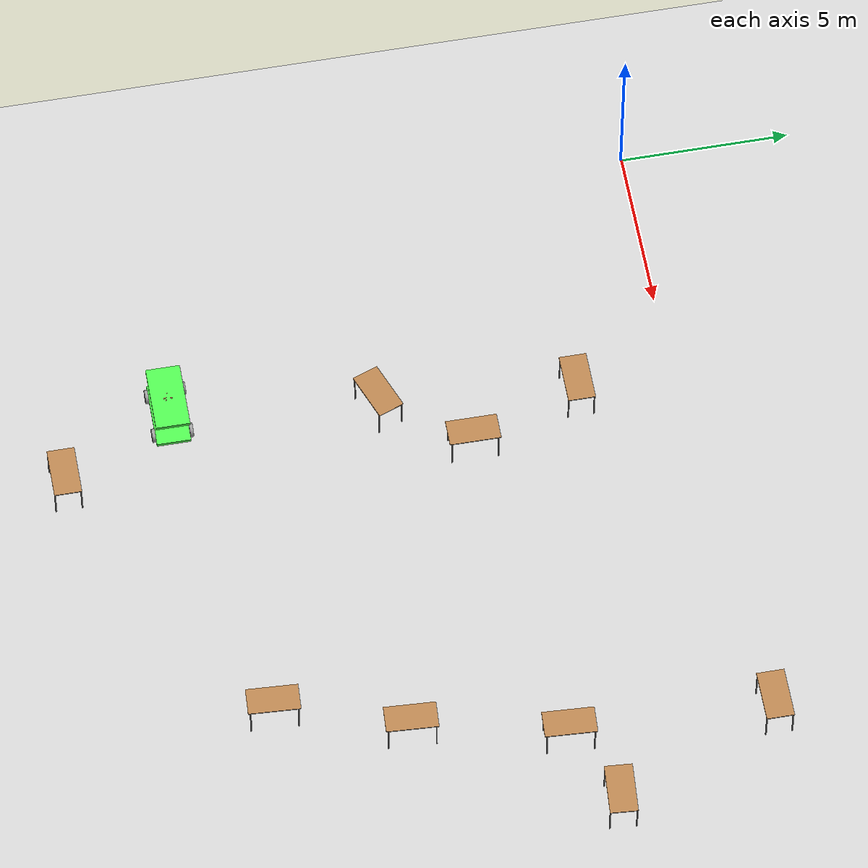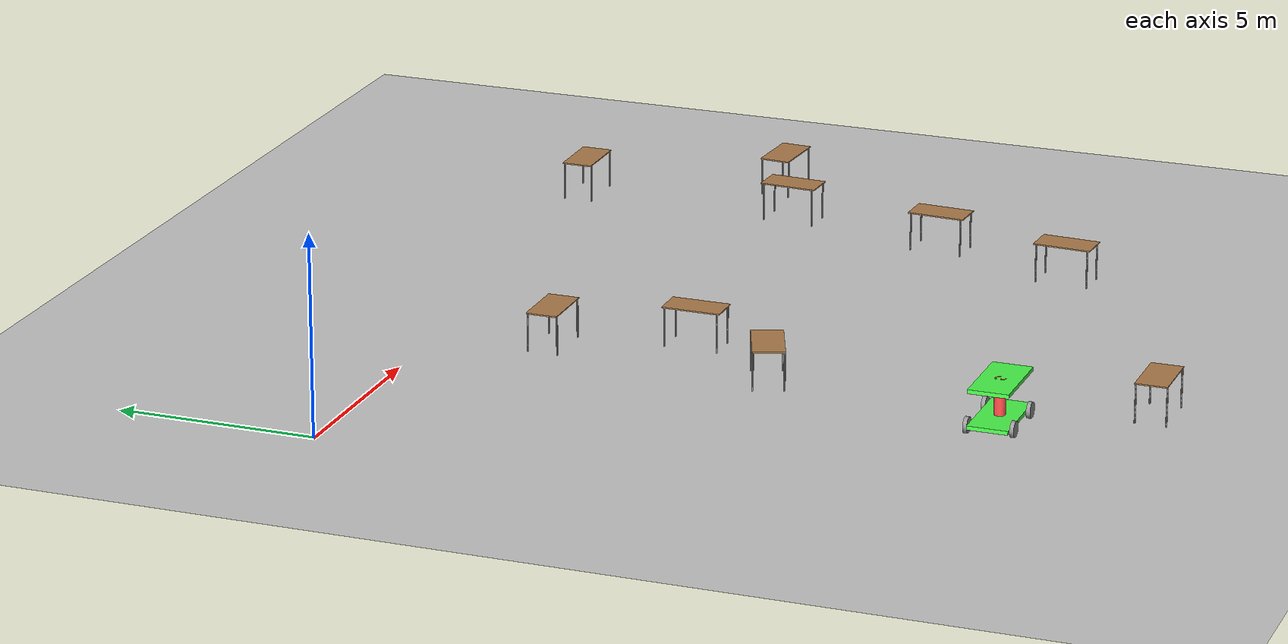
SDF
<sdf version="1.6">
 <world name="default">
  <model name="ground_plane">
   <static>1</static>
   <link name="link">
    <collision name="collision">
     <geometry><plane><normal>0 0 1</normal><size>100 100</size></plane></geometry>
     <surface>
      <contact><collide_bitmask>65535</collide_bitmask></contact>
      <friction><ode><mu>100</mu><mu2>50</mu2></ode></friction>
     </surface>
    </collision>
    <visual name="visual">
     <cast_shadows>0</cast_shadows>
     <geometry><plane><normal>0 0 1</normal><size>100 100</size></plane></geometry>
     <material>
      <script><uri>file://media/materials/scripts/gazebo.material</uri><name>Gazebo/Grey</name></script>
     </material>
    </visual>
   </link>
  </model>
  <model name="table_clone_1">
   <static>1</static>
   <link name="link">
    <collision name="surface">
     <pose>0 0 1 0 -0 0</pose>
     <geometry><box><size>1.5 0.8 0.03</size></box></geometry>
     <surface><friction><ode><mu>0.6</mu><mu2>0.6</mu2></ode></friction></surface>
    </collision>
    <visual name="visual1">
     <pose>0 0 1 0 -0 0</pose>
     <geometry><box><size>1.5 0.8 0.03</size></box></geometry>
     <material>
      <script><uri>file://media/materials/scripts/gazebo.material</uri><name>Gazebo/Wood</name></script>
     </material>
    </visual>
    <collision name="front_left_leg">
     <pose>0.68 0.38 0.5 0 -0 0</pose>
     <geometry><cylinder><radius>0.02</radius><length>1</length></cylinder></geometry>
    </collision>
    <visual name="front_left_leg">
     <pose>0.68 0.38 0.5 0 -0 0</pose>
     <geometry><cylinder><radius>0.02</radius><length>1</length></cylinder></geometry>
     <material>
      <script><uri>file://media/materials/scripts/gazebo.material</uri><name>Gazebo/Grey</name></script>
     </material>
    </visual>
    <collision name="front_right_leg">
     <pose>0.68 -0.38 0.5 0 -0 0</pose>
     <geometry><cylinder><radius>0.02</radius><length>1</length></cylinder></geometry>
    </collision>
    <visual name="front_right_leg">
     <pose>0.68 -0.38 0.5 0 -0 0</pose>
     <geometry><cylinder><radius>0.02</radius><length>1</length></cylinder></geometry>
     <material>
      <script><uri>file://media/materials/scripts/gazebo.material</uri><name>Gazebo/Grey</name></script>
     </material>
    </visual>
    <collision name="back_right_leg">
     <pose>-0.68 -0.38 0.5 0 -0 0</pose>
     <geometry><cylinder><radius>0.02</radius><length>1</length></cylinder></geometry>
    </collision>
    <visual name="back_right_leg">
     <pose>-0.68 -0.38 0.5 0 -0 0</pose>
     <geometry><cylinder><radius>0.02</radius><length>1</length></cylinder></geometry>
     <material>
      <script><uri>file://media/materials/scripts/gazebo.material</uri><name>Gazebo/Grey</name></script>
     </material>
    </visual>
    <collision name="back_left_leg">
     <pose>-0.68 0.38 0.5 0 -0 0</pose>
     <geometry><cylinder><radius>0.02</radius><length>1</length></cylinder></geometry>
    </collision>
    <visual name="back_left_leg">
     <pose>-0.68 0.38 0.5 0 -0 0</pose>
     <geometry><cylinder><radius>0.02</radius><length>1</length></cylinder></geometry>
     <material>
      <script><uri>file://media/materials/scripts/gazebo.material</uri><name>Gazebo/Grey</name></script>
     </material>
    </visual>
   </link>
   <pose>7.30475 -8.59495 0 -0.003044 -0.007938 0.366147</pose>
  </model>
  <model name="table_clone_2">
   <static>1</static>
   <link name="link">
    <collision name="surface">
     <pose>0 0 1 0 -0 0</pose>
     <geometry><box><size>1.5 0.8 0.03</size></box></geometry>
     <surface><friction><ode><mu>0.6</mu><mu2>0.6</mu2></ode></friction></surface>
    </collision>
    <visual name="visual1">
     <pose>0 0 1 0 -0 0</pose>
     <geometry><box><size>1.5 0.8 0.03</size></box></geometry>
     <material>
      <script><uri>file://media/materials/scripts/gazebo.material</uri><name>Gazebo/Wood</name></script>
     </material>
    </visual>
    <collision name="front_left_leg">
     <pose>0.68 0.38 0.5 0 -0 0</pose>
     <geometry><cylinder><radius>0.02</radius><length>1</length></cylinder></geometry>
    </collision>
    <visual name="front_left_leg">
     <pose>0.68 0.38 0.5 0 -0 0</pose>
     <geometry><cylinder><radius>0.02</radius><length>1</length></cylinder></geometry>
     <material>
      <script><uri>file://media/materials/scripts/gazebo.material</uri><name>Gazebo/Grey</name></script>
     </material>
    </visual>
    <collision name="front_right_leg">
     <pose>0.68 -0.38 0.5 0 -0 0</pose>
     <geometry><cylinder><radius>0.02</radius><length>1</length></cylinder></geometry>
    </collision>
    <visual name="front_right_leg">
     <pose>0.68 -0.38 0.5 0 -0 0</pose>
     <geometry><cylinder><radius>0.02</radius><length>1</length></cylinder></geometry>
     <material>
      <script><uri>file://media/materials/scripts/gazebo.material</uri><name>Gazebo/Grey</name></script>
     </material>
    </visual>
    <collision name="back_right_leg">
     <pose>-0.68 -0.38 0.5 0 -0 0</pose>
     <geometry><cylinder><radius>0.02</radius><length>1</length></cylinder></geometry>
    </collision>
    <visual name="back_right_leg">
     <pose>-0.68 -0.38 0.5 0 -0 0</pose>
     <geometry><cylinder><radius>0.02</radius><length>1</length></cylinder></geometry>
     <material>
      <script><uri>file://media/materials/scripts/gazebo.material</uri><name>Gazebo/Grey</name></script>
     </material>
    </visual>
    <collision name="back_left_leg">
     <pose>-0.68 0.38 0.5 0 -0 0</pose>
     <geometry><cylinder><radius>0.02</radius><length>1</length></cylinder></geometry>
    </collision>
    <visual name="back_left_leg">
     <pose>-0.68 0.38 0.5 0 -0 0</pose>
     <geometry><cylinder><radius>0.02</radius><length>1</length></cylinder></geometry>
     <material>
      <script><uri>file://media/materials/scripts/gazebo.material</uri><name>Gazebo/Grey</name></script>
     </material>
    </visual>
   </link>
   <pose>9.06126 -6.12559 0 0 -0 1.56558</pose>
  </model>
  <model name="table_clone_3">
   <static>1</static>
   <link name="link">
    <collision name="surface">
     <pose>0 0 1 0 -0 0</pose>
     <geometry><box><size>1.5 0.8 0.03</size></box></geometry>
     <surface><friction><ode><mu>0.6</mu><mu2>0.6</mu2></ode></friction></surface>
    </collision>
    <visual name="visual1">
     <pose>0 0 1 0 -0 0</pose>
     <geometry><box><size>1.5 0.8 0.03</size></box></geometry>
     <material>
      <script><uri>file://media/materials/scripts/gazebo.material</uri><name>Gazebo/Wood</name></script>
     </material>
    </visual>
    <collision name="front_left_leg">
     <pose>0.68 0.38 0.5 0 -0 0</pose>
     <geometry><cylinder><radius>0.02</radius><length>1</length></cylinder></geometry>
    </collision>
    <visual name="front_left_leg">
     <pose>0.68 0.38 0.5 0 -0 0</pose>
     <geometry><cylinder><radius>0.02</radius><length>1</length></cylinder></geometry>
     <material>
      <script><uri>file://media/materials/scripts/gazebo.material</uri><name>Gazebo/Grey</name></script>
     </material>
    </visual>
    <collision name="front_right_leg">
     <pose>0.68 -0.38 0.5 0 -0 0</pose>
     <geometry><cylinder><radius>0.02</radius><length>1</length></cylinder></geometry>
    </collision>
    <visual name="front_right_leg">
     <pose>0.68 -0.38 0.5 0 -0 0</pose>
     <geometry><cylinder><radius>0.02</radius><length>1</length></cylinder></geometry>
     <material>
      <script><uri>file://media/materials/scripts/gazebo.material</uri><name>Gazebo/Grey</name></script>
     </material>
    </visual>
    <collision name="back_right_leg">
     <pose>-0.68 -0.38 0.5 0 -0 0</pose>
     <geometry><cylinder><radius>0.02</radius><length>1</length></cylinder></geometry>
    </collision>
    <visual name="back_right_leg">
     <pose>-0.68 -0.38 0.5 0 -0 0</pose>
     <geometry><cylinder><radius>0.02</radius><length>1</length></cylinder></geometry>
     <material>
      <script><uri>file://media/materials/scripts/gazebo.material</uri><name>Gazebo/Grey</name></script>
     </material>
    </visual>
    <collision name="back_left_leg">
     <pose>-0.68 0.38 0.5 0 -0 0</pose>
     <geometry><cylinder><radius>0.02</radius><length>1</length></cylinder></geometry>
    </collision>
    <visual name="back_left_leg">
     <pose>-0.68 0.38 0.5 0 -0 0</pose>
     <geometry><cylinder><radius>0.02</radius><length>1</length></cylinder></geometry>
     <material>
      <script><uri>file://media/materials/scripts/gazebo.material</uri><name>Gazebo/Grey</name></script>
     </material>
    </visual>
   </link>
   <pose>7.84177 -2.84617 0 0 -0 0</pose>
  </model>
  <model name="table_clone_7">
   <static>1</static>
   <link name="link">
    <collision name="surface">
     <pose>0 0 1 0 -0 0</pose>
     <geometry><box><size>1.5 0.8 0.03</size></box></geometry>
     <surface><friction><ode><mu>0.6</mu><mu2>0.6</mu2></ode></friction></surface>
    </collision>
    <visual name="visual1">
     <pose>0 0 1 0 -0 0</pose>
     <geometry><box><size>1.5 0.8 0.03</size></box></geometry>
     <material>
      <script><uri>file://media/materials/scripts/gazebo.material</uri><name>Gazebo/Wood</name></script>
     </material>
    </visual>
    <collision name="front_left_leg">
     <pose>0.68 0.38 0.5 0 -0 0</pose>
     <geometry><cylinder><radius>0.02</radius><length>1</length></cylinder></geometry>
    </collision>
    <visual name="front_left_leg">
     <pose>0.68 0.38 0.5 0 -0 0</pose>
     <geometry><cylinder><radius>0.02</radius><length>1</length></cylinder></geometry>
     <material>
      <script><uri>file://media/materials/scripts/gazebo.material</uri><name>Gazebo/Grey</name></script>
     </material>
    </visual>
    <collision name="front_right_leg">
     <pose>0.68 -0.38 0.5 0 -0 0</pose>
     <geometry><cylinder><radius>0.02</radius><length>1</length></cylinder></geometry>
    </collision>
    <visual name="front_right_leg">
     <pose>0.68 -0.38 0.5 0 -0 0</pose>
     <geometry><cylinder><radius>0.02</radius><length>1</length></cylinder></geometry>
     <material>
      <script><uri>file://media/materials/scripts/gazebo.material</uri><name>Gazebo/Grey</name></script>
     </material>
    </visual>
    <collision name="back_right_leg">
     <pose>-0.68 -0.38 0.5 0 -0 0</pose>
     <geometry><cylinder><radius>0.02</radius><length>1</length></cylinder></geometry>
    </collision>
    <visual name="back_right_leg">
     <pose>-0.68 -0.38 0.5 0 -0 0</pose>
     <geometry><cylinder><radius>0.02</radius><length>1</length></cylinder></geometry>
     <material>
      <script><uri>file://media/materials/scripts/gazebo.material</uri><name>Gazebo/Grey</name></script>
     </material>
    </visual>
    <collision name="back_left_leg">
     <pose>-0.68 0.38 0.5 0 -0 0</pose>
     <geometry><cylinder><radius>0.02</radius><length>1</length></cylinder></geometry>
    </collision>
    <visual name="back_left_leg">
     <pose>-0.68 0.38 0.5 0 -0 0</pose>
     <geometry><cylinder><radius>0.02</radius><length>1</length></cylinder></geometry>
     <material>
      <script><uri>file://media/materials/scripts/gazebo.material</uri><name>Gazebo/Grey</name></script>
     </material>
    </visual>
   </link>
   <pose>19.173 0.672259 0 0 -0 0</pose>
  </model>
  <model name="table_clone_8">
   <static>1</static>
   <link name="link">
    <collision name="surface">
     <pose>0 0 1 0 -0 0</pose>
     <geometry><box><size>1.5 0.8 0.03</size></box></geometry>
     <surface><friction><ode><mu>0.6</mu><mu2>0.6</mu2></ode></friction></surface>
    </collision>
    <visual name="visual1">
     <pose>0 0 1 0 -0 0</pose>
     <geometry><box><size>1.5 0.8 0.03</size></box></geometry>
     <material>
      <script><uri>file://media/materials/scripts/gazebo.material</uri><name>Gazebo/Wood</name></script>
     </material>
    </visual>
    <collision name="front_left_leg">
     <pose>0.68 0.38 0.5 0 -0 0</pose>
     <geometry><cylinder><radius>0.02</radius><length>1</length></cylinder></geometry>
    </collision>
    <visual name="front_left_leg">
     <pose>0.68 0.38 0.5 0 -0 0</pose>
     <geometry><cylinder><radius>0.02</radius><length>1</length></cylinder></geometry>
     <material>
      <script><uri>file://media/materials/scripts/gazebo.material</uri><name>Gazebo/Grey</name></script>
     </material>
    </visual>
    <collision name="front_right_leg">
     <pose>0.68 -0.38 0.5 0 -0 0</pose>
     <geometry><cylinder><radius>0.02</radius><length>1</length></cylinder></geometry>
    </collision>
    <visual name="front_right_leg">
     <pose>0.68 -0.38 0.5 0 -0 0</pose>
     <geometry><cylinder><radius>0.02</radius><length>1</length></cylinder></geometry>
     <material>
      <script><uri>file://media/materials/scripts/gazebo.material</uri><name>Gazebo/Grey</name></script>
     </material>
    </visual>
    <collision name="back_right_leg">
     <pose>-0.68 -0.38 0.5 0 -0 0</pose>
     <geometry><cylinder><radius>0.02</radius><length>1</length></cylinder></geometry>
    </collision>
    <visual name="back_right_leg">
     <pose>-0.68 -0.38 0.5 0 -0 0</pose>
     <geometry><cylinder><radius>0.02</radius><length>1</length></cylinder></geometry>
     <material>
      <script><uri>file://media/materials/scripts/gazebo.material</uri><name>Gazebo/Grey</name></script>
     </material>
    </visual>
    <collision name="back_left_leg">
     <pose>-0.68 0.38 0.5 0 -0 0</pose>
     <geometry><cylinder><radius>0.02</radius><length>1</length></cylinder></geometry>
    </collision>
    <visual name="back_left_leg">
     <pose>-0.68 0.38 0.5 0 -0 0</pose>
     <geometry><cylinder><radius>0.02</radius><length>1</length></cylinder></geometry>
     <material>
      <script><uri>file://media/materials/scripts/gazebo.material</uri><name>Gazebo/Grey</name></script>
     </material>
    </visual>
   </link>
   <pose>8.37566 -17.9239 0 0 -0 0</pose>
  </model>
  <model name="table_clone_9_clone">
   <static>1</static>
   <link name="link">
    <collision name="surface">
     <pose>0 0 1 0 -0 0</pose>
     <geometry><box><size>1.5 0.8 0.03</size></box></geometry>
     <surface><friction><ode><mu>0.6</mu><mu2>0.6</mu2></ode></friction></surface>
    </collision>
    <visual name="visual1">
     <pose>0 0 1 0 -0 0</pose>
     <geometry><box><size>1.5 0.8 0.03</size></box></geometry>
     <material>
      <script><uri>file://media/materials/scripts/gazebo.material</uri><name>Gazebo/Wood</name></script>
     </material>
    </visual>
    <collision name="front_left_leg">
     <pose>0.68 0.38 0.5 0 -0 0</pose>
     <geometry><cylinder><radius>0.02</radius><length>1</length></cylinder></geometry>
    </collision>
    <visual name="front_left_leg">
     <pose>0.68 0.38 0.5 0 -0 0</pose>
     <geometry><cylinder><radius>0.02</radius><length>1</length></cylinder></geometry>
     <material>
      <script><uri>file://media/materials/scripts/gazebo.material</uri><name>Gazebo/Grey</name></script>
     </material>
    </visual>
    <collision name="front_right_leg">
     <pose>0.68 -0.38 0.5 0 -0 0</pose>
     <geometry><cylinder><radius>0.02</radius><length>1</length></cylinder></geometry>
    </collision>
    <visual name="front_right_leg">
     <pose>0.68 -0.38 0.5 0 -0 0</pose>
     <geometry><cylinder><radius>0.02</radius><length>1</length></cylinder></geometry>
     <material>
      <script><uri>file://media/materials/scripts/gazebo.material</uri><name>Gazebo/Grey</name></script>
     </material>
    </visual>
    <collision name="back_right_leg">
     <pose>-0.68 -0.38 0.5 0 -0 0</pose>
     <geometry><cylinder><radius>0.02</radius><length>1</length></cylinder></geometry>
    </collision>
    <visual name="back_right_leg">
     <pose>-0.68 -0.38 0.5 0 -0 0</pose>
     <geometry><cylinder><radius>0.02</radius><length>1</length></cylinder></geometry>
     <material>
      <script><uri>file://media/materials/scripts/gazebo.material</uri><name>Gazebo/Grey</name></script>
     </material>
    </visual>
    <collision name="back_left_leg">
     <pose>-0.68 0.38 0.5 0 -0 0</pose>
     <geometry><cylinder><radius>0.02</radius><length>1</length></cylinder></geometry>
    </collision>
    <visual name="back_left_leg">
     <pose>-0.68 0.38 0.5 0 -0 0</pose>
     <geometry><cylinder><radius>0.02</radius><length>1</length></cylinder></geometry>
     <material>
      <script><uri>file://media/materials/scripts/gazebo.material</uri><name>Gazebo/Grey</name></script>
     </material>
    </visual>
   </link>
   <pose>16.8315 -13.2669 0 0 0 -1.62839</pose>
  </model>
  <model name="table_clone_9_clone_0">
   <static>1</static>
   <link name="link">
    <collision name="surface">
     <pose>0 0 1 0 -0 0</pose>
     <geometry><box><size>1.5 0.8 0.03</size></box></geometry>
     <surface><friction><ode><mu>0.6</mu><mu2>0.6</mu2></ode></friction></surface>
    </collision>
    <visual name="visual1">
     <pose>0 0 1 0 -0 0</pose>
     <geometry><box><size>1.5 0.8 0.03</size></box></geometry>
     <material>
      <script><uri>file://media/materials/scripts/gazebo.material</uri><name>Gazebo/Wood</name></script>
     </material>
    </visual>
    <collision name="front_left_leg">
     <pose>0.68 0.38 0.5 0 -0 0</pose>
     <geometry><cylinder><radius>0.02</radius><length>1</length></cylinder></geometry>
    </collision>
    <visual name="front_left_leg">
     <pose>0.68 0.38 0.5 0 -0 0</pose>
     <geometry><cylinder><radius>0.02</radius><length>1</length></cylinder></geometry>
     <material>
      <script><uri>file://media/materials/scripts/gazebo.material</uri><name>Gazebo/Grey</name></script>
     </material>
    </visual>
    <collision name="front_right_leg">
     <pose>0.68 -0.38 0.5 0 -0 0</pose>
     <geometry><cylinder><radius>0.02</radius><length>1</length></cylinder></geometry>
    </collision>
    <visual name="front_right_leg">
     <pose>0.68 -0.38 0.5 0 -0 0</pose>
     <geometry><cylinder><radius>0.02</radius><length>1</length></cylinder></geometry>
     <material>
      <script><uri>file://media/materials/scripts/gazebo.material</uri><name>Gazebo/Grey</name></script>
     </material>
    </visual>
    <collision name="back_right_leg">
     <pose>-0.68 -0.38 0.5 0 -0 0</pose>
     <geometry><cylinder><radius>0.02</radius><length>1</length></cylinder></geometry>
    </collision>
    <visual name="back_right_leg">
     <pose>-0.68 -0.38 0.5 0 -0 0</pose>
     <geometry><cylinder><radius>0.02</radius><length>1</length></cylinder></geometry>
     <material>
      <script><uri>file://media/materials/scripts/gazebo.material</uri><name>Gazebo/Grey</name></script>
     </material>
    </visual>
    <collision name="back_left_leg">
     <pose>-0.68 0.38 0.5 0 -0 0</pose>
     <geometry><cylinder><radius>0.02</radius><length>1</length></cylinder></geometry>
    </collision>
    <visual name="back_left_leg">
     <pose>-0.68 0.38 0.5 0 -0 0</pose>
     <geometry><cylinder><radius>0.02</radius><length>1</length></cylinder></geometry>
     <material>
      <script><uri>file://media/materials/scripts/gazebo.material</uri><name>Gazebo/Grey</name></script>
     </material>
    </visual>
   </link>
   <pose>18.0809 -9.54856 0 0 0 -1.62839</pose>
  </model>
  <model name="table_clone_9_clone_1">
   <static>1</static>
   <link name="link">
    <collision name="surface">
     <pose>0 0 1 0 -0 0</pose>
     <geometry><box><size>1.5 0.8 0.03</size></box></geometry>
     <surface><friction><ode><mu>0.6</mu><mu2>0.6</mu2></ode></friction></surface>
    </collision>
    <visual name="visual1">
     <pose>0 0 1 0 -0 0</pose>
     <geometry><box><size>1.5 0.8 0.03</size></box></geometry>
     <material>
      <script><uri>file://media/materials/scripts/gazebo.material</uri><name>Gazebo/Wood</name></script>
     </material>
    </visual>
    <collision name="front_left_leg">
     <pose>0.68 0.38 0.5 0 -0 0</pose>
     <geometry><cylinder><radius>0.02</radius><length>1</length></cylinder></geometry>
    </collision>
    <visual name="front_left_leg">
     <pose>0.68 0.38 0.5 0 -0 0</pose>
     <geometry><cylinder><radius>0.02</radius><length>1</length></cylinder></geometry>
     <material>
      <script><uri>file://media/materials/scripts/gazebo.material</uri><name>Gazebo/Grey</name></script>
     </material>
    </visual>
    <collision name="front_right_leg">
     <pose>0.68 -0.38 0.5 0 -0 0</pose>
     <geometry><cylinder><radius>0.02</radius><length>1</length></cylinder></geometry>
    </collision>
    <visual name="front_right_leg">
     <pose>0.68 -0.38 0.5 0 -0 0</pose>
     <geometry><cylinder><radius>0.02</radius><length>1</length></cylinder></geometry>
     <material>
      <script><uri>file://media/materials/scripts/gazebo.material</uri><name>Gazebo/Grey</name></script>
     </material>
    </visual>
    <collision name="back_right_leg">
     <pose>-0.68 -0.38 0.5 0 -0 0</pose>
     <geometry><cylinder><radius>0.02</radius><length>1</length></cylinder></geometry>
    </collision>
    <visual name="back_right_leg">
     <pose>-0.68 -0.38 0.5 0 -0 0</pose>
     <geometry><cylinder><radius>0.02</radius><length>1</length></cylinder></geometry>
     <material>
      <script><uri>file://media/materials/scripts/gazebo.material</uri><name>Gazebo/Grey</name></script>
     </material>
    </visual>
    <collision name="back_left_leg">
     <pose>-0.68 0.38 0.5 0 -0 0</pose>
     <geometry><cylinder><radius>0.02</radius><length>1</length></cylinder></geometry>
    </collision>
    <visual name="back_left_leg">
     <pose>-0.68 0.38 0.5 0 -0 0</pose>
     <geometry><cylinder><radius>0.02</radius><length>1</length></cylinder></geometry>
     <material>
      <script><uri>file://media/materials/scripts/gazebo.material</uri><name>Gazebo/Grey</name></script>
     </material>
    </visual>
   </link>
   <pose>19.0283 -5.19668 0 0 0 -1.62839</pose>
  </model>
  <model name="table_clone_9_clone_2">
   <static>1</static>
   <link name="link">
    <collision name="surface">
     <pose>0 0 1 0 -0 0</pose>
     <geometry><box><size>1.5 0.8 0.03</size></box></geometry>
     <surface><friction><ode><mu>0.6</mu><mu2>0.6</mu2></ode></friction></surface>
    </collision>
    <visual name="visual1">
     <pose>0 0 1 0 -0 0</pose>
     <geometry><box><size>1.5 0.8 0.03</size></box></geometry>
     <material>
      <script><uri>file://media/materials/scripts/gazebo.material</uri><name>Gazebo/Wood</name></script>
     </material>
    </visual>
    <collision name="front_left_leg">
     <pose>0.68 0.38 0.5 0 -0 0</pose>
     <geometry><cylinder><radius>0.02</radius><length>1</length></cylinder></geometry>
    </collision>
    <visual name="front_left_leg">
     <pose>0.68 0.38 0.5 0 -0 0</pose>
     <geometry><cylinder><radius>0.02</radius><length>1</length></cylinder></geometry>
     <material>
      <script><uri>file://media/materials/scripts/gazebo.material</uri><name>Gazebo/Grey</name></script>
     </material>
    </visual>
    <collision name="front_right_leg">
     <pose>0.68 -0.38 0.5 0 -0 0</pose>
     <geometry><cylinder><radius>0.02</radius><length>1</length></cylinder></geometry>
    </collision>
    <visual name="front_right_leg">
     <pose>0.68 -0.38 0.5 0 -0 0</pose>
     <geometry><cylinder><radius>0.02</radius><length>1</length></cylinder></geometry>
     <material>
      <script><uri>file://media/materials/scripts/gazebo.material</uri><name>Gazebo/Grey</name></script>
     </material>
    </visual>
    <collision name="back_right_leg">
     <pose>-0.68 -0.38 0.5 0 -0 0</pose>
     <geometry><cylinder><radius>0.02</radius><length>1</length></cylinder></geometry>
    </collision>
    <visual name="back_right_leg">
     <pose>-0.68 -0.38 0.5 0 -0 0</pose>
     <geometry><cylinder><radius>0.02</radius><length>1</length></cylinder></geometry>
     <material>
      <script><uri>file://media/materials/scripts/gazebo.material</uri><name>Gazebo/Grey</name></script>
     </material>
    </visual>
    <collision name="back_left_leg">
     <pose>-0.68 0.38 0.5 0 -0 0</pose>
     <geometry><cylinder><radius>0.02</radius><length>1</length></cylinder></geometry>
    </collision>
    <visual name="back_left_leg">
     <pose>-0.68 0.38 0.5 0 -0 0</pose>
     <geometry><cylinder><radius>0.02</radius><length>1</length></cylinder></geometry>
     <material>
      <script><uri>file://media/materials/scripts/gazebo.material</uri><name>Gazebo/Grey</name></script>
     </material>
    </visual>
   </link>
   <pose>21.3765 -4.17537 0 0 -0 3.06439</pose>
  </model>
  <model name="myRobot_clone">
   <link name="link_2">
    <inertial>
     <mass>1</mass>
     <inertia>
      <ixx>0.166667</ixx>
      <ixy>0</ixy>
      <ixz>0</ixz>
      <iyy>0.166667</iyy>
      <iyz>0</iyz>
      <izz>0.166667</izz>
     </inertia>
     <pose>0 0 0.2 0 -0 0</pose>
    </inertial>
    <pose>-0.650389 0 0 0 -0 0</pose>
    <visual name="visual">
     <geometry><box><size>2 1 0.1</size></box></geometry>
     <material>
      <lighting>1</lighting>
      <script><uri>file://media/materials/scripts/gazebo.material</uri><name>Gazebo/Grey</name></script>
      <shader type="pixel"><normal_map>__default__</normal_map></shader>
      <ambient>0.3 1 0.3 1</ambient>
      <diffuse>0.7 0.7 0.7 1</diffuse>
      <specular>0.01 0.01 0.01 1</specular>
      <emissive>0 0 0 1</emissive>
     </material>
    </visual>
    <collision name="collision">
     <geometry><box><size>2 1 0.1</size></box></geometry>
     <surface>
      <friction>
       <ode><mu>1</mu><mu2>1</mu2><fdir1>0 0 0</fdir1><slip1>0</slip1><slip2>0</slip2></ode>
       <torsional>
        <coefficient>1</coefficient>
        <patch_radius>0</patch_radius>
        <surface_radius>0</surface_radius>
        <use_patch_radius>1</use_patch_radius>
        <ode><slip>0</slip></ode>
       </torsional>
      </friction>
      <bounce><restitution_coefficient>0</restitution_coefficient><threshold>1e+06</threshold></bounce>
      <contact>
       <collide_without_contact>0</collide_without_contact>
       <collide_without_contact_bitmask>1</collide_without_contact_bitmask>
       <collide_bitmask>1</collide_bitmask>
       <ode>
        <soft_cfm>0</soft_cfm>
        <soft_erp>0.2</soft_erp>
        <kp>1e+13</kp>
        <kd>1</kd>
        <max_vel>0.01</max_vel>
        <min_depth>0</min_depth>
       </ode>
       <bullet>
        <split_impulse>1</split_impulse>
        <split_impulse_penetration_threshold>-0.01</split_impulse_penetration_threshold>
        <soft_cfm>0</soft_cfm>
        <soft_erp>0.2</soft_erp>
        <kp>1e+13</kp>
        <kd>1</kd>
       </bullet>
      </contact>
     </surface>
    </collision>
   </link>
   <link name="link_2_0">
    <inertial>
     <mass>1</mass>
     <inertia><ixx>0.145833</ixx><ixy>0</ixy><ixz>0</ixz><iyy>0.145833</iyy><iyz>0</iyz><izz>0.125</izz></inertia>
    </inertial>
    <pose>-0.650389 -0 0.45 0 -0 0</pose>
    <visual name="visual">
     <geometry><cylinder><radius>0.14</radius><length>1</length></cylinder></geometry>
     <material>
      <lighting>1</lighting>
      <script><uri>file://media/materials/scripts/gazebo.material</uri><name>Gazebo/Grey</name></script>
      <shader type="pixel"><normal_map>__default__</normal_map></shader>
      <ambient>1 0.3 0.3 1</ambient>
      <diffuse>0.7 0.7 0.7 1</diffuse>
      <specular>0.01 0.01 0.01 1</specular>
      <emissive>0 0 0 1</emissive>
     </material>
    </visual>
    <collision name="collision">
     <geometry><cylinder><radius>0.14</radius><length>1</length></cylinder></geometry>
     <surface>
      <friction>
       <ode><mu>1</mu><mu2>1</mu2><fdir1>0 0 0</fdir1><slip1>0</slip1><slip2>0</slip2></ode>
       <torsional>
        <coefficient>1</coefficient>
        <patch_radius>0</patch_radius>
        <surface_radius>0</surface_radius>
        <use_patch_radius>1</use_patch_radius>
        <ode><slip>0</slip></ode>
       </torsional>
      </friction>
      <bounce><restitution_coefficient>0</restitution_coefficient><threshold>1e+06</threshold></bounce>
      <contact>
       <collide_without_contact>0</collide_without_contact>
       <collide_without_contact_bitmask>1</collide_without_contact_bitmask>
       <collide_bitmask>1</collide_bitmask>
       <ode>
        <soft_cfm>0</soft_cfm>
        <soft_erp>0.2</soft_erp>
        <kp>1e+13</kp>
        <kd>1</kd>
        <max_vel>0.01</max_vel>
        <min_depth>0</min_depth>
       </ode>
       <bullet>
        <split_impulse>1</split_impulse>
        <split_impulse_penetration_threshold>-0.01</split_impulse_penetration_threshold>
        <soft_cfm>0</soft_cfm>
        <soft_erp>0.2</soft_erp>
        <kp>1e+13</kp>
        <kd>1</kd>
       </bullet>
      </contact>
     </surface>
    </collision>
   </link>
   <link name="link_2_clone">
    <inertial>
     <mass>1</mass>
     <inertia>
      <ixx>0.166667</ixx>
      <ixy>0</ixy>
      <ixz>0</ixz>
      <iyy>0.166667</iyy>
      <iyz>0</iyz>
      <izz>0.166667</izz>
     </inertia>
     <pose>0 0 0.2 0 -0 0</pose>
    </inertial>
    <pose>-0.650389 0 0.9 0 -0 0</pose>
    <visual name="visual">
     <geometry><box><size>2 1 0.1</size></box></geometry>
     <material>
      <lighting>1</lighting>
      <script><uri>file://media/materials/scripts/gazebo.material</uri><name>Gazebo/Grey</name></script>
      <shader type="pixel"><normal_map>__default__</normal_map></shader>
      <ambient>0.3 1 0.3 1</ambient>
      <diffuse>0.7 0.7 0.7 1</diffuse>
      <specular>0.01 0.01 0.01 1</specular>
      <emissive>0 0 0 1</emissive>
     </material>
    </visual>
    <collision name="collision">
     <geometry><box><size>2 1 0.1</size></box></geometry>
     <surface>
      <friction>
       <ode><mu>1</mu><mu2>1</mu2><fdir1>0 0 0</fdir1><slip1>0</slip1><slip2>0</slip2></ode>
       <torsional>
        <coefficient>1</coefficient>
        <patch_radius>0</patch_radius>
        <surface_radius>0</surface_radius>
        <use_patch_radius>1</use_patch_radius>
        <ode><slip>0</slip></ode>
       </torsional>
      </friction>
      <bounce><restitution_coefficient>0</restitution_coefficient><threshold>1e+06</threshold></bounce>
      <contact>
       <collide_without_contact>0</collide_without_contact>
       <collide_without_contact_bitmask>1</collide_without_contact_bitmask>
       <collide_bitmask>1</collide_bitmask>
       <ode>
        <soft_cfm>0</soft_cfm>
        <soft_erp>0.2</soft_erp>
        <kp>1e+13</kp>
        <kd>1</kd>
        <max_vel>0.01</max_vel>
        <min_depth>0</min_depth>
       </ode>
       <bullet>
        <split_impulse>1</split_impulse>
        <split_impulse_penetration_threshold>-0.01</split_impulse_penetration_threshold>
        <soft_cfm>0</soft_cfm>
        <soft_erp>0.2</soft_erp>
        <kp>1e+13</kp>
        <kd>1</kd>
       </bullet>
      </contact>
     </surface>
    </collision>
   </link>
   <link name="link_3">
    <inertial>
     <mass>1</mass>
     <inertia><ixx>0.145833</ixx><ixy>0</ixy><ixz>0</ixz><iyy>0.145833</iyy><iyz>0</iyz><izz>0.125</izz></inertia>
    </inertial>
    <pose>0 -0.550019 -0 1.5707 -0 0</pose>
    <visual name="visual">
     <geometry><cylinder><radius>0.2</radius><length>0.1</length></cylinder></geometry>
     <material>
      <lighting>1</lighting>
      <script><uri>file://media/materials/scripts/gazebo.material</uri><name>Gazebo/Grey</name></script>
      <shader type="pixel"><normal_map>__default__</normal_map></shader>
      <ambient>0.3 0.3 0.3 1</ambient>
      <diffuse>0.7 0.7 0.7 1</diffuse>
      <specular>0.01 0.01 0.01 1</specular>
      <emissive>0 0 0 1</emissive>
     </material>
    </visual>
    <collision name="collision">
     <geometry><cylinder><radius>0.2</radius><length>0.1</length></cylinder></geometry>
     <surface>
      <friction>
       <ode><mu>1</mu><mu2>1</mu2><fdir1>0 0 0</fdir1><slip1>0</slip1><slip2>0</slip2></ode>
       <torsional>
        <coefficient>1</coefficient>
        <patch_radius>0</patch_radius>
        <surface_radius>0</surface_radius>
        <use_patch_radius>1</use_patch_radius>
        <ode><slip>0</slip></ode>
       </torsional>
      </friction>
      <bounce><restitution_coefficient>0</restitution_coefficient><threshold>1e+06</threshold></bounce>
      <contact>
       <collide_without_contact>0</collide_without_contact>
       <collide_without_contact_bitmask>1</collide_without_contact_bitmask>
       <collide_bitmask>1</collide_bitmask>
       <ode>
        <soft_cfm>0</soft_cfm>
        <soft_erp>0.2</soft_erp>
        <kp>1e+13</kp>
        <kd>1</kd>
        <max_vel>0.01</max_vel>
        <min_depth>0</min_depth>
       </ode>
       <bullet>
        <split_impulse>1</split_impulse>
        <split_impulse_penetration_threshold>-0.01</split_impulse_penetration_threshold>
        <soft_cfm>0</soft_cfm>
        <soft_erp>0.2</soft_erp>
        <kp>1e+13</kp>
        <kd>1</kd>
       </bullet>
      </contact>
     </surface>
    </collision>
   </link>
   <link name="link_3_clone">
    <inertial>
     <mass>1</mass>
     <inertia><ixx>0.145833</ixx><ixy>0</ixy><ixz>0</ixz><iyy>0.145833</iyy><iyz>0</iyz><izz>0.125</izz></inertia>
    </inertial>
    <pose>-0 0.550019 0 1.5707 -0 0</pose>
    <visual name="visual">
     <geometry><cylinder><radius>0.2</radius><length>0.1</length></cylinder></geometry>
     <material>
      <lighting>1</lighting>
      <script><uri>file://media/materials/scripts/gazebo.material</uri><name>Gazebo/Grey</name></script>
      <shader type="pixel"><normal_map>__default__</normal_map></shader>
      <ambient>0.3 0.3 0.3 1</ambient>
      <diffuse>0.7 0.7 0.7 1</diffuse>
      <specular>0.01 0.01 0.01 1</specular>
      <emissive>0 0 0 1</emissive>
     </material>
    </visual>
    <collision name="collision">
     <geometry><cylinder><radius>0.2</radius><length>0.1</length></cylinder></geometry>
     <surface>
      <friction>
       <ode><mu>1</mu><mu2>1</mu2><fdir1>0 0 0</fdir1><slip1>0</slip1><slip2>0</slip2></ode>
       <torsional>
        <coefficient>1</coefficient>
        <patch_radius>0</patch_radius>
        <surface_radius>0</surface_radius>
        <use_patch_radius>1</use_patch_radius>
        <ode><slip>0</slip></ode>
       </torsional>
      </friction>
      <bounce><restitution_coefficient>0</restitution_coefficient><threshold>1e+06</threshold></bounce>
      <contact>
       <collide_without_contact>0</collide_without_contact>
       <collide_without_contact_bitmask>1</collide_without_contact_bitmask>
       <collide_bitmask>1</collide_bitmask>
       <ode>
        <soft_cfm>0</soft_cfm>
        <soft_erp>0.2</soft_erp>
        <kp>1e+13</kp>
        <kd>1</kd>
        <max_vel>0.01</max_vel>
        <min_depth>0</min_depth>
       </ode>
       <bullet>
        <split_impulse>1</split_impulse>
        <split_impulse_penetration_threshold>-0.01</split_impulse_penetration_threshold>
        <soft_cfm>0</soft_cfm>
        <soft_erp>0.2</soft_erp>
        <kp>1e+13</kp>
        <kd>1</kd>
       </bullet>
      </contact>
     </surface>
    </collision>
   </link>
   <link name="link_3_clone_0">
    <inertial>
     <mass>1</mass>
     <inertia><ixx>0.145833</ixx><ixy>0</ixy><ixz>0</ixz><iyy>0.145833</iyy><iyz>0</iyz><izz>0.125</izz></inertia>
    </inertial>
    <pose>-1.33712 -0.550019 -0 1.5707 -0 0</pose>
    <visual name="visual">
     <geometry><cylinder><radius>0.2</radius><length>0.1</length></cylinder></geometry>
     <material>
      <lighting>1</lighting>
      <script><uri>file://media/materials/scripts/gazebo.material</uri><name>Gazebo/Grey</name></script>
      <shader type="pixel"><normal_map>__default__</normal_map></shader>
      <ambient>0 0 0 1</ambient>
      <diffuse>0.7 0.7 0.7 1</diffuse>
      <specular>0.01 0.01 0.01 1</specular>
      <emissive>0 0 0 1</emissive>
     </material>
    </visual>
    <collision name="collision">
     <geometry><cylinder><radius>0.2</radius><length>0.1</length></cylinder></geometry>
     <surface>
      <friction>
       <ode><mu>1</mu><mu2>1</mu2><fdir1>0 0 0</fdir1><slip1>0</slip1><slip2>0</slip2></ode>
       <torsional>
        <coefficient>1</coefficient>
        <patch_radius>0</patch_radius>
        <surface_radius>0</surface_radius>
        <use_patch_radius>1</use_patch_radius>
        <ode><slip>0</slip></ode>
       </torsional>
      </friction>
      <bounce><restitution_coefficient>0</restitution_coefficient><threshold>1e+06</threshold></bounce>
      <contact>
       <collide_without_contact>0</collide_without_contact>
       <collide_without_contact_bitmask>1</collide_without_contact_bitmask>
       <collide_bitmask>1</collide_bitmask>
       <ode>
        <soft_cfm>0</soft_cfm>
        <soft_erp>0.2</soft_erp>
        <kp>1e+13</kp>
        <kd>1</kd>
        <max_vel>0.01</max_vel>
        <min_depth>0</min_depth>
       </ode>
       <bullet>
        <split_impulse>1</split_impulse>
        <split_impulse_penetration_threshold>-0.01</split_impulse_penetration_threshold>
        <soft_cfm>0</soft_cfm>
        <soft_erp>0.2</soft_erp>
        <kp>1e+13</kp>
        <kd>1</kd>
       </bullet>
      </contact>
     </surface>
    </collision>
   </link>
   <link name="link_3_clone_1">
    <inertial>
     <mass>1</mass>
     <inertia><ixx>0.145833</ixx><ixy>0</ixy><ixz>0</ixz><iyy>0.145833</iyy><iyz>0</iyz><izz>0.125</izz></inertia>
    </inertial>
    <pose>-1.45039 0.550019 0 1.5707 -0 0</pose>
    <visual name="visual">
     <geometry><cylinder><radius>0.2</radius><length>0.1</length></cylinder></geometry>
     <material>
      <lighting>1</lighting>
      <script><uri>file://media/materials/scripts/gazebo.material</uri><name>Gazebo/Grey</name></script>
      <shader type="pixel"><normal_map>__default__</normal_map></shader>
      <ambient>0.3 0.3 0.3 1</ambient>
      <diffuse>0.7 0.7 0.7 1</diffuse>
      <specular>0.01 0.01 0.01 1</specular>
      <emissive>0 0 0 1</emissive>
     </material>
    </visual>
    <collision name="collision">
     <geometry><cylinder><radius>0.2</radius><length>0.1</length></cylinder></geometry>
     <surface>
      <friction>
       <ode><mu>1</mu><mu2>1</mu2><fdir1>0 0 0</fdir1><slip1>0</slip1><slip2>0</slip2></ode>
       <torsional>
        <coefficient>1</coefficient>
        <patch_radius>0</patch_radius>
        <surface_radius>0</surface_radius>
        <use_patch_radius>1</use_patch_radius>
        <ode><slip>0</slip></ode>
       </torsional>
      </friction>
      <bounce><restitution_coefficient>0</restitution_coefficient><threshold>1e+06</threshold></bounce>
      <contact>
       <collide_without_contact>0</collide_without_contact>
       <collide_without_contact_bitmask>1</collide_without_contact_bitmask>
       <collide_bitmask>1</collide_bitmask>
       <ode>
        <soft_cfm>0</soft_cfm>
        <soft_erp>0.2</soft_erp>
        <kp>1e+13</kp>
        <kd>1</kd>
        <max_vel>0.01</max_vel>
        <min_depth>0</min_depth>
       </ode>
       <bullet>
        <split_impulse>1</split_impulse>
        <split_impulse_penetration_threshold>-0.01</split_impulse_penetration_threshold>
        <soft_cfm>0</soft_cfm>
        <soft_erp>0.2</soft_erp>
        <kp>1e+13</kp>
        <kd>1</kd>
       </bullet>
      </contact>
     </surface>
    </collision>
   </link>
   <joint name="link_2_0_JOINT_3" type="fixed">
    <parent>link_2_0</parent>
    <child>link_2_clone</child>
    <physics>
     <ode><limit><cfm>0</cfm><erp>0.2</erp></limit><suspension><cfm>0</cfm><erp>0.2</erp></suspension></ode>
    </physics>
   </joint>
   <joint name="link_2_JOINT_0" type="revolute">
    <parent>link_2</parent>
    <child>link_3_clone_0</child>
    <axis>
     <xyz>1 0 0</xyz>
     <use_parent_model_frame>0</use_parent_model_frame>
     <limit>
      <lower>-1.79769e+308</lower>
      <upper>1.79769e+308</upper>
      <effort>-1</effort>
      <velocity>-1</velocity>
     </limit>
     <dynamics>
      <spring_reference>0</spring_reference>
      <spring_stiffness>0</spring_stiffness>
      <damping>0</damping>
      <friction>0</friction>
     </dynamics>
    </axis>
    <physics>
     <ode><limit><cfm>0</cfm><erp>0.2</erp></limit><suspension><cfm>0</cfm><erp>0.2</erp></suspension></ode>
    </physics>
   </joint>
   <joint name="link_2_JOINT_1" type="revolute">
    <parent>link_2</parent>
    <child>link_3_clone_1</child>
    <axis>
     <xyz>1 0 0</xyz>
     <use_parent_model_frame>0</use_parent_model_frame>
     <limit>
      <lower>-1.79769e+308</lower>
      <upper>1.79769e+308</upper>
      <effort>-1</effort>
      <velocity>-1</velocity>
     </limit>
     <dynamics>
      <spring_reference>0</spring_reference>
      <spring_stiffness>0</spring_stiffness>
      <damping>0</damping>
      <friction>0</friction>
     </dynamics>
    </axis>
    <physics>
     <ode><limit><cfm>0</cfm><erp>0.2</erp></limit><suspension><cfm>0</cfm><erp>0.2</erp></suspension></ode>
    </physics>
   </joint>
   <joint name="link_2_JOINT_2" type="revolute">
    <parent>link_2</parent>
    <child>link_3</child>
    <axis>
     <xyz>0 0 1</xyz>
     <use_parent_model_frame>0</use_parent_model_frame>
     <limit>
      <lower>-1.79769e+308</lower>
      <upper>1.79769e+308</upper>
      <effort>-1</effort>
      <velocity>-1</velocity>
     </limit>
     <dynamics>
      <spring_reference>0</spring_reference>
      <spring_stiffness>0</spring_stiffness>
      <damping>0</damping>
      <friction>0</friction>
     </dynamics>
    </axis>
    <physics>
     <ode><limit><cfm>0</cfm><erp>0.2</erp></limit><suspension><cfm>0</cfm><erp>0.2</erp></suspension></ode>
    </physics>
   </joint>
   <joint name="link_2_JOINT_3" type="revolute">
    <parent>link_2</parent>
    <child>link_3_clone</child>
    <axis>
     <xyz>0 0 1</xyz>
     <use_parent_model_frame>0</use_parent_model_frame>
     <limit>
      <lower>-1.79769e+308</lower>
      <upper>1.79769e+308</upper>
      <effort>-1</effort>
      <velocity>-1</velocity>
     </limit>
     <dynamics>
      <spring_reference>0</spring_reference>
      <spring_stiffness>0</spring_stiffness>
      <damping>0</damping>
      <friction>0</friction>
     </dynamics>
    </axis>
    <physics>
     <ode><limit><cfm>0</cfm><erp>0.2</erp></limit><suspension><cfm>0</cfm><erp>0.2</erp></suspension></ode>
    </physics>
   </joint>
   <static>0</static>
   <pose>7.14201 -14.6163 0.199995 0 3e-06 -0.003349</pose>
  </model>
 </world>
</sdf>
